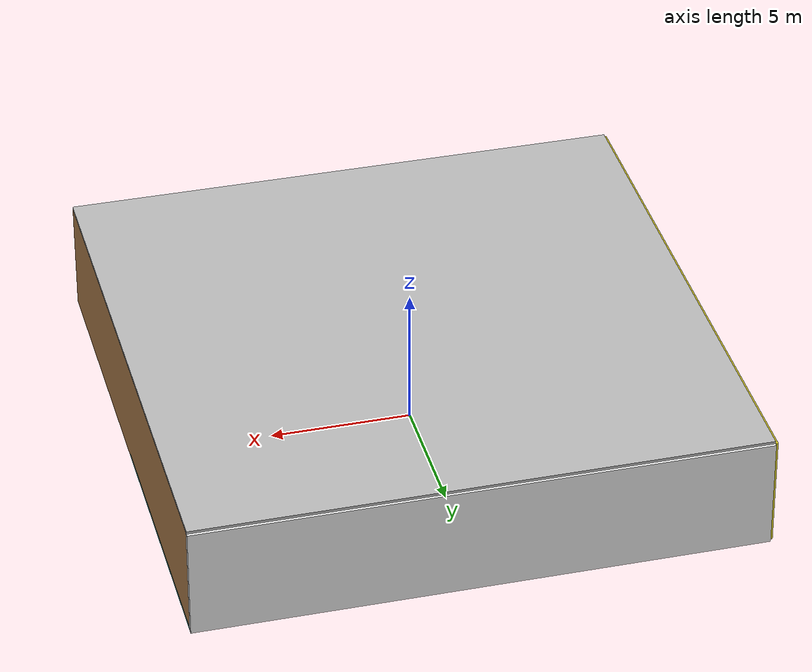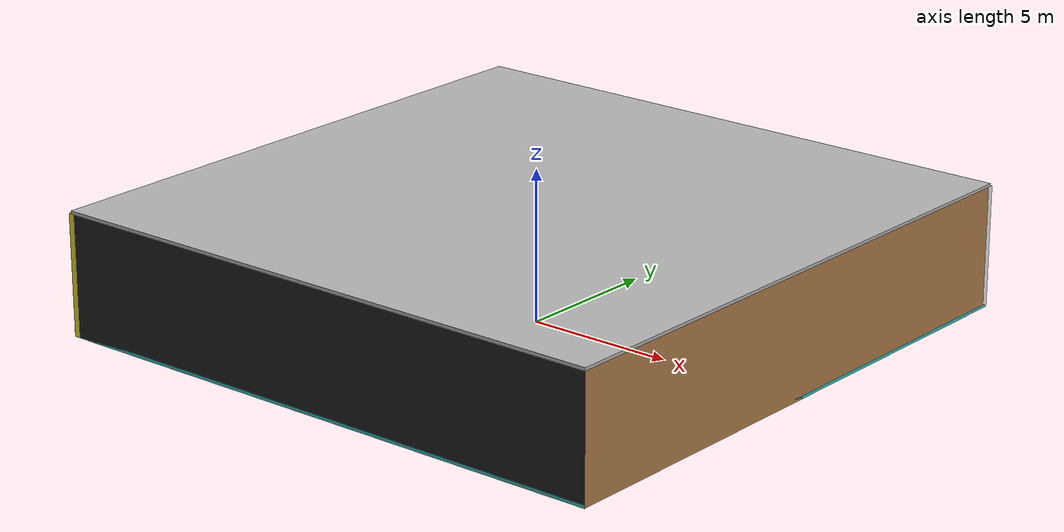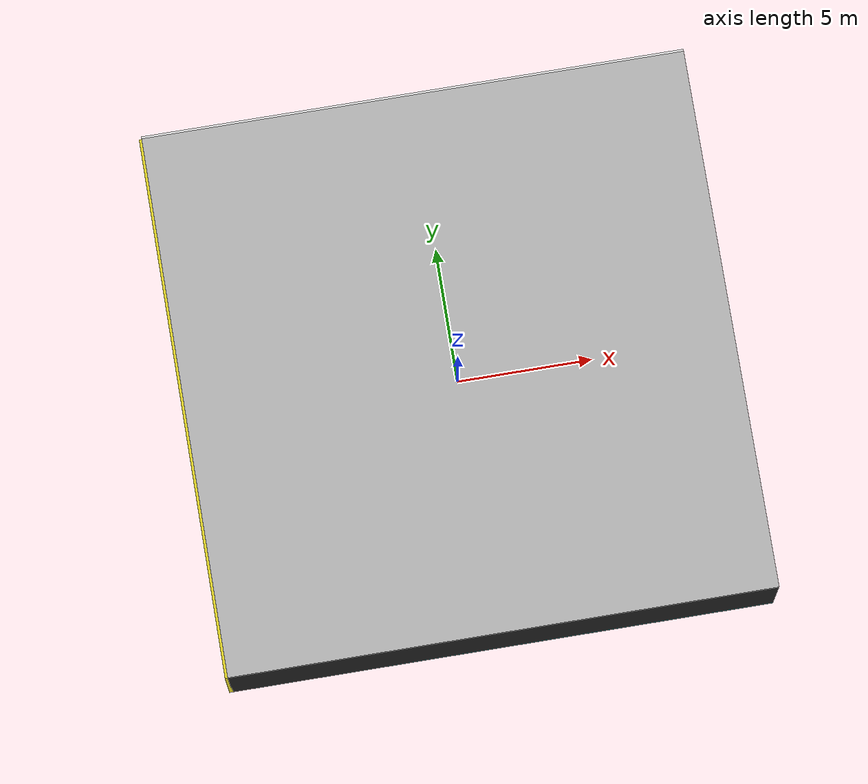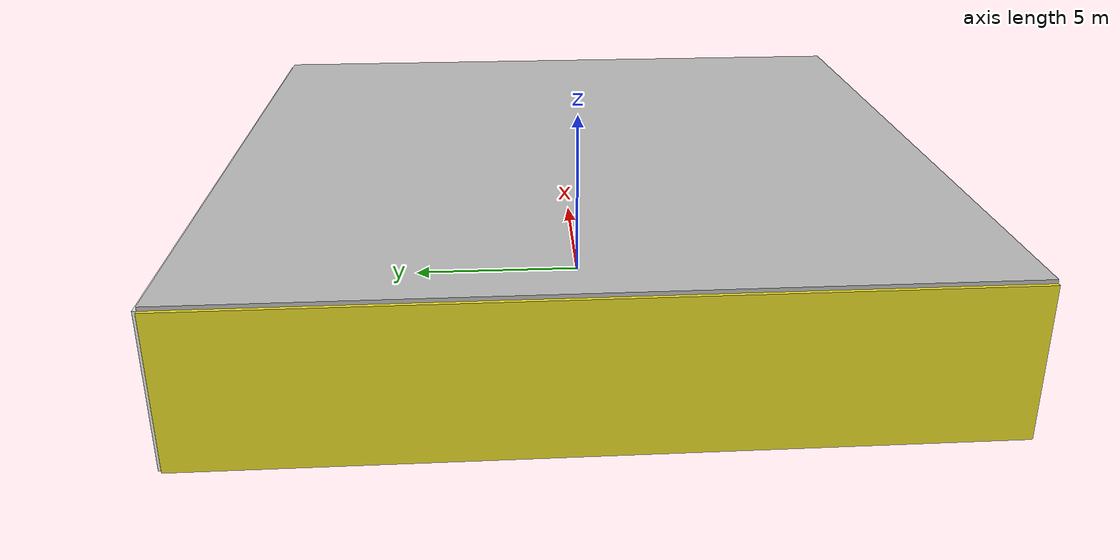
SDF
<sdf version="1.4">
 <world name="default">
  <physics type="ode">
   <max_step_size>0.001</max_step_size>
   <real_time_factor>1</real_time_factor>
   <real_time_update_rate>1000</real_time_update_rate>
   <gravity>0 0 -9.8</gravity>
  </physics>
  <scene><ambient>0.4 0.4 0.4 1</ambient><background>0.7 0.7 0.7 1</background><shadows>1</shadows></scene>
  <model name="Surrounding">
   <static>1</static>
   <link name="Ceiling">
    <collision name="Ceiling_Collision"><geometry><box><size>20 20 0.1</size></box></geometry></collision>
    <visual name="Ceiling_Visual">
     <geometry><box><size>20 20 0.1</size></box></geometry>
     <material>
      <script><uri>file://media/materials/scripts/gazebo.material</uri><name>Gazebo/PioneerBody</name></script>
     </material>
    </visual>
    <pose>0 0 4.05 0 0 0</pose>
   </link>
   <link name="Wall_South">
    <collision name="Wall_South_Collision">
     <geometry><box><size>20 0 4</size></box></geometry>
     <pose>0 0 2 0 -0 0</pose>
    </collision>
    <visual name="Wall_South_Visual">
     <pose>0 0 2 0 -0 0</pose>
     <geometry><box><size>20 0 4</size></box></geometry>
     <material>
      <script><uri>file://media/materials/scripts/gazebo.material</uri><name>Gazebo/Black</name></script>
     </material>
    </visual>
    <velocity_decay><linear>0</linear><angular>0</angular></velocity_decay>
    <pose>0 -10 0 0 -0 0</pose>
   </link>
   <link name="Wall_East">
    <collision name="Wall_21_Collision">
     <geometry><box><size>20 0 4</size></box></geometry>
     <pose>0 0 2 0 -0 0</pose>
    </collision>
    <visual name="Wall_21_Visual">
     <pose>0 0 2 0 -0 0</pose>
     <geometry><box><size>20 0 4</size></box></geometry>
     <material>
      <script><uri>file://media/materials/scripts/gazebo.material</uri><name>Gazebo/Wood</name></script>
     </material>
    </visual>
    <velocity_decay><linear>0</linear><angular>0</angular></velocity_decay>
    <pose>10 0 0 0 -0 1.5708</pose>
   </link>
   <link name="Wall_North">
    <collision name="Wall_22_Collision">
     <geometry><box><size>20 0.2 4</size></box></geometry>
     <pose>0 0 2 0 -0 0</pose>
    </collision>
    <visual name="Wall_22_Visual">
     <pose>0 0 2 0 -0 0</pose>
     <geometry><box><size>20 0.2 4</size></box></geometry>
     <material>
      <script><uri>file://media/materials/scripts/gazebo.material</uri><name>Gazebo/White</name></script>
     </material>
    </visual>
    <velocity_decay><linear>0</linear><angular>0</angular></velocity_decay>
    <pose>0 10 0 0 -0 0</pose>
   </link>
   <link name="Wall_West">
    <collision name="Wall_23_Collision">
     <geometry><box><size>20 0.2 4</size></box></geometry>
     <pose>0 0 2 0 -0 0</pose>
    </collision>
    <visual name="Wall_23_Visual">
     <pose>0 0 2 0 -0 0</pose>
     <geometry><box><size>20 0.2 4</size></box></geometry>
     <material>
      <script><uri>file://media/materials/scripts/gazebo.material</uri><name>Gazebo/YellowGlow</name></script>
     </material>
    </visual>
    <velocity_decay><linear>0</linear><angular>0</angular></velocity_decay>
    <pose>-10 0 0 0 0 -1.5708</pose>
   </link>
   <link name="Ground_link">
    <collision name="collision">
     <pose>0 0 .05 0 -0 0</pose>
     <geometry><box><size>20 20 0.1</size></box></geometry>
    </collision>
    <visual name="visual">
     <pose>0 0 .05 0 -0 0</pose>
     <geometry><box><size>20 20 0.1</size></box></geometry>
     <material>
      <script><uri>file://media/materials/scripts/gazebo.material</uri><name>Gazebo/TurquoiseGlow</name></script>
     </material>
    </visual>
   </link>
   <static>1</static>
  </model>
  <spherical_coordinates>
   <surface_model>EARTH_WGS84</surface_model>
   <latitude_deg>0</latitude_deg>
   <longitude_deg>0</longitude_deg>
   <elevation>0</elevation>
   <heading_deg>0</heading_deg>
  </spherical_coordinates>
  <light name="lightball_0" type="diffuse">
   <diffuse>0.8 0.8 0.8 1</diffuse>
   <specular>0.2 0.2 0.2 1</specular>
   <attenuation>
    <range>100</range>
    <constant>0.7</constant>
    <linear>0.01</linear>
    <quadratic>0.001</quadratic>
   </attenuation>
   <direction>-0.5 0.1 -0.9</direction>
   <pose>3.39066844114 -4.52697490676 0.645649970531 0 0 0</pose>
  </light>
  <light name="lightball_1" type="diffuse">
   <diffuse>0.8 0.8 0.8 1</diffuse>
   <specular>0.2 0.2 0.2 1</specular>
   <attenuation>
    <range>100</range>
    <constant>0.7</constant>
    <linear>0.01</linear>
    <quadratic>0.001</quadratic>
   </attenuation>
   <direction>-0.5 0.1 -0.9</direction>
   <pose>-7.65112517961 -9.1887545314 3.23788213962 0 0 0</pose>
  </light>
  <light name="lightball_2" type="diffuse">
   <diffuse>0.8 0.8 0.8 1</diffuse>
   <specular>0.2 0.2 0.2 1</specular>
   <attenuation>
    <range>100</range>
    <constant>0.7</constant>
    <linear>0.01</linear>
    <quadratic>0.001</quadratic>
   </attenuation>
   <direction>-0.5 0.1 -0.9</direction>
   <pose>9.41040817586 -7.40716559446 0.639061018777 0 0 0</pose>
  </light>
  <light name="lightball_3" type="diffuse">
   <diffuse>0.8 0.8 0.8 1</diffuse>
   <specular>0.2 0.2 0.2 1</specular>
   <attenuation>
    <range>100</range>
    <constant>0.7</constant>
    <linear>0.01</linear>
    <quadratic>0.001</quadratic>
   </attenuation>
   <direction>-0.5 0.1 -0.9</direction>
   <pose>9.6741115382 4.62705125113 3.89042989143 0 0 0</pose>
  </light>
  <light name="lightball_4" type="diffuse">
   <diffuse>0.8 0.8 0.8 1</diffuse>
   <specular>0.2 0.2 0.2 1</specular>
   <attenuation>
    <range>100</range>
    <constant>0.7</constant>
    <linear>0.01</linear>
    <quadratic>0.001</quadratic>
   </attenuation>
   <direction>-0.5 0.1 -0.9</direction>
   <pose>-7.3363529922 1.48332264158 1.41403059371 0 0 0</pose>
  </light>
  <light name="lightball_5" type="diffuse">
   <diffuse>0.8 0.8 0.8 1</diffuse>
   <specular>0.2 0.2 0.2 1</specular>
   <attenuation>
    <range>100</range>
    <constant>0.7</constant>
    <linear>0.01</linear>
    <quadratic>0.001</quadratic>
   </attenuation>
   <direction>-0.5 0.1 -0.9</direction>
   <pose>6.95357437182 -4.7621466617 1.99170856539 0 0 0</pose>
  </light>
  <light name="lightball_6" type="diffuse">
   <diffuse>0.8 0.8 0.8 1</diffuse>
   <specular>0.2 0.2 0.2 1</specular>
   <attenuation>
    <range>100</range>
    <constant>0.7</constant>
    <linear>0.01</linear>
    <quadratic>0.001</quadratic>
   </attenuation>
   <direction>-0.5 0.1 -0.9</direction>
   <pose>-4.62941809674 -0.604975625523 1.4342134231 0 0 0</pose>
  </light>
  <light name="lightball_7" type="diffuse">
   <diffuse>0.8 0.8 0.8 1</diffuse>
   <specular>0.2 0.2 0.2 1</specular>
   <attenuation>
    <range>100</range>
    <constant>0.7</constant>
    <linear>0.01</linear>
    <quadratic>0.001</quadratic>
   </attenuation>
   <direction>-0.5 0.1 -0.9</direction>
   <pose>-1.50641208759 5.33335459292 2.65959208113 0 0 0</pose>
  </light>
  <light name="lightball_8" type="diffuse">
   <diffuse>0.8 0.8 0.8 1</diffuse>
   <specular>0.2 0.2 0.2 1</specular>
   <attenuation>
    <range>100</range>
    <constant>0.7</constant>
    <linear>0.01</linear>
    <quadratic>0.001</quadratic>
   </attenuation>
   <direction>-0.5 0.1 -0.9</direction>
   <pose>-1.83756662507 8.94183305663 0.823944965792 0 0 0</pose>
  </light>
  <light name="lightball_9" type="diffuse">
   <diffuse>0.8 0.8 0.8 1</diffuse>
   <specular>0.2 0.2 0.2 1</specular>
   <attenuation>
    <range>100</range>
    <constant>0.7</constant>
    <linear>0.01</linear>
    <quadratic>0.001</quadratic>
   </attenuation>
   <direction>-0.5 0.1 -0.9</direction>
   <pose>8.2266670217 8.59921086246 3.31784087489 0 0 0</pose>
  </light>
  <light name="lightball_10" type="diffuse">
   <diffuse>0.8 0.8 0.8 1</diffuse>
   <specular>0.2 0.2 0.2 1</specular>
   <attenuation>
    <range>100</range>
    <constant>0.7</constant>
    <linear>0.01</linear>
    <quadratic>0.001</quadratic>
   </attenuation>
   <direction>-0.5 0.1 -0.9</direction>
   <pose>-4.23236407747 -2.72471154191 0.930665758979 0 0 0</pose>
  </light>
  <light name="lightball_11" type="diffuse">
   <diffuse>0.8 0.8 0.8 1</diffuse>
   <specular>0.2 0.2 0.2 1</specular>
   <attenuation>
    <range>100</range>
    <constant>0.7</constant>
    <linear>0.01</linear>
    <quadratic>0.001</quadratic>
   </attenuation>
   <direction>-0.5 0.1 -0.9</direction>
   <pose>-6.67937242256 -2.9979134875 2.31247445039 0 0 0</pose>
  </light>
  <light name="lightball_12" type="diffuse">
   <diffuse>0.8 0.8 0.8 1</diffuse>
   <specular>0.2 0.2 0.2 1</specular>
   <attenuation>
    <range>100</range>
    <constant>0.7</constant>
    <linear>0.01</linear>
    <quadratic>0.001</quadratic>
   </attenuation>
   <direction>-0.5 0.1 -0.9</direction>
   <pose>1.68113262569 0.594454626253 2.32507370298 0 0 0</pose>
  </light>
  <light name="lightball_13" type="diffuse">
   <diffuse>0.8 0.8 0.8 1</diffuse>
   <specular>0.2 0.2 0.2 1</specular>
   <attenuation>
    <range>100</range>
    <constant>0.7</constant>
    <linear>0.01</linear>
    <quadratic>0.001</quadratic>
   </attenuation>
   <direction>-0.5 0.1 -0.9</direction>
   <pose>-1.53393840431 5.11163200773 2.56084804742 0 0 0</pose>
  </light>
  <include><uri>model://cabinet</uri><pose>-4.22291456281 -1.76296281866 0 0 0 1.29849491746</pose></include>
  <include>
   <uri>model://construction_cone</uri>
   <pose>-4.06299058255 5.10829360493 0 0 0 2.70882954537</pose>
  </include>
  <include><uri>model://cabinet</uri><pose>-2.66296803189 6.90490687696 0 0 0 2.31461582035</pose></include>
  <include>
   <uri>model://construction_cone</uri>
   <pose>1.69738968574 -7.07980953191 0 0 0 1.20442069213</pose>
  </include>
  <include>
   <uri>model://robocup_3Dsim_goal</uri>
   <pose>0.955766996012 6.44304388649 0 0 0 2.01663447067</pose>
  </include>
  <include>
   <uri>model://robocup_3Dsim_goal</uri>
   <pose>7.34960727759 8.60672449533 0 0 0 1.19402218437</pose>
  </include>
 </world>
</sdf>

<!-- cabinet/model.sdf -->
<sdf version="1.5">
  <model name="cabinet">
    <static>true</static>
    <link name="cabinet_bottom_plate">
      <inertial>
        <pose>0 0 -1 0 0 0</pose>
        <inertia>
          <ixx>2.050000</ixx>
          <ixy>0</ixy>
          <ixz>0</ixz>
          <iyy>2.050000</iyy>
          <iyz>0</iyz>
          <izz>2.050000</izz>
        </inertia>
        <mass>25.000000</mass>
      </inertial>
      <collision name="cabinet_bottom_plate_geom">
        <pose>0 0 0.010000 0 0 0</pose>
        <geometry>
          <box>
            <size>0.450000 0.450000 0.020000</size>
          </box>
        </geometry>
      </collision>
      <visual name="cabinet_bottom_plate_geom_visual">
        <pose>0 0 0.010000 0 0 0</pose>
        <geometry>
          <box>
            <size>0.450000 0.450000 0.020000</size>
          </box>
        </geometry>
        <material>
          <script>
            <uri>model://media/materials/scripts/gazebo.material</uri>
            <name>Gazebo/Wood</name>
          </script>
        </material>
      </visual>
      <collision name="cabinet_bottom_plate_geom_cabinet_back_plate">
        <pose>0.235000 0 0.510000 0 0 0</pose>
        <geometry>
          <box>
            <size>0.020000 0.450000 1.020000</size>
          </box>
        </geometry>
      </collision>
      <visual name="cabinet_bottom_plate_geom_cabinet_back_plate_visual">
        <pose>0.235000 0 0.510000 0 0 0</pose>
        <geometry>
          <box>
            <size>0.020000 0.450000 1.020000</size>
          </box>
        </geometry>
        <material>
          <script>
            <uri>model://media/materials/scripts/gazebo.material</uri>
            <name>Gazebo/Wood</name>
          </script>
        </material>
      </visual>
      <collision name="cabinet_bottom_plate_geom_cabinet_left_plate">
        <pose>0 0.235000 0.510000 0 0 0</pose>
        <geometry>
          <box>
            <size>0.450000 0.020000 1.020000</size>
          </box>
        </geometry>
      </collision>
      <visual name="cabinet_bottom_plate_geom_cabinet_left_plate_visual">
        <pose>0 0.235000 0.510000 0 0 0</pose>
        <geometry>
          <box>
            <size>0.450000 0.020000 1.020000</size>
          </box>
        </geometry>
        <material>
          <script>
            <uri>model://media/materials/scripts/gazebo.material</uri>
            <name>Gazebo/Wood</name>
          </script>
        </material>
      </visual>
      <collision name="cabinet_bottom_plate_geom_cabinet_middle_plate">
        <pose>0 0 0.510000 0 0 0</pose>
        <geometry>
          <box>
            <size>0.450000 0.450000 0.020000</size>
          </box>
        </geometry>
      </collision>
      <visual name="cabinet_bottom_plate_geom_cabinet_middle_plate_visual">
        <pose>0 0 0.510000 0 0 0</pose>
        <geometry>
          <box>
            <size>0.450000 0.450000 0.020000</size>
          </box>
        </geometry>
        <material>
          <script>
            <uri>model://media/materials/scripts/gazebo.material</uri>
            <name>Gazebo/Wood</name>
          </script>
        </material>
      </visual>
      <collision name="cabinet_bottom_plate_geom_cabinet_right_plate">
        <pose>0 -0.235000 0.510000 0 0 0</pose>
        <geometry>
          <box>
            <size>0.450000 0.020000 1.020000</size>
          </box>
        </geometry>
      </collision>
      <visual name="cabinet_bottom_plate_geom_cabinet_right_plate_visual">
        <pose>0 -0.235000 0.510000 0 0 0</pose>
        <geometry>
          <box>
            <size>0.450000 0.020000 1.020000</size>
          </box>
        </geometry>
        <material>
          <script>
            <uri>model://media/materials/scripts/gazebo.material</uri>
            <name>Gazebo/Wood</name>
          </script>
        </material>
      </visual>
      <collision name="cabinet_bottom_plate_geom_cabinet_top_plate">
        <pose>0 0 1.010000 0 0 0</pose>
        <geometry>
          <box>
            <size>0.450000 0.450000 0.020000</size>
          </box>
        </geometry>
      </collision>
      <visual name="cabinet_bottom_plate_geom_cabinet_top_plate_visual">
        <pose>0 0 1.010000 0 0 0</pose>
        <geometry>
          <box>
            <size>0.450000 0.450000 0.020000</size>
          </box>
        </geometry>
        <material>
          <script>
            <uri>model://media/materials/scripts/gazebo.material</uri>
            <name>Gazebo/Wood</name>
          </script>
        </material>
      </visual>
    </link>
  </model>
</sdf>

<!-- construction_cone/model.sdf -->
<sdf version="1.5">
  <model name="Construction Cone">
    <link name="link">
      <collision name="collision">
        <geometry>
          <mesh>
            <scale>10 10 10</scale>
            <uri>file://isr-testbed/construction_cone/meshes/construction_cone.dae</uri>
          </mesh>
        </geometry>
      </collision>
      <visual name="visual">
        <geometry>
          <mesh>
            <scale>10 10 10</scale>
            <uri>file://isr-testbed/construction_cone/meshes/construction_cone.dae</uri>
          </mesh>
        </geometry>
      </visual>
    </link>
  </model>
</sdf>

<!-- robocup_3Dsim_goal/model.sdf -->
<sdf version="1.5">
  <model name="robocup_3d_goal">
    <static>true</static>
    <link name="left_post">
      <pose>0 1.05 0.45 0 0 0</pose>
      <collision name="collision">
        <geometry>
          <cylinder>
            <radius>0.05</radius>
            <length>0.9</length>
          </cylinder>
        </geometry>
      </collision>
      <visual name="visual">
        <geometry>
          <cylinder>
            <radius>0.05</radius>
            <length>0.9</length>
          </cylinder>
        </geometry>
        <material>
          <script>
            <uri>file://media/materials/scripts/gazebo.material</uri>
            <name>Gazebo/ZincYellow</name>
          </script>
        </material>
      </visual>
    </link>
    <link name="left_support_horiz_lower">
      <pose>0.30 1.05 0.01 0 0 0</pose>
      <collision name="collision">
        <geometry>
          <box>
            <size>0.50 0.02 0.02</size>
          </box>
        </geometry>
      </collision>
      <visual name="visual">
        <geometry>
          <box>
            <size>0.50 0.02 0.02</size>
          </box>
        </geometry>
        <material>
          <script>
            <uri>file://media/materials/scripts/gazebo.material</uri>
            <name>Gazebo/White</name>
          </script>
        </material>
      </visual>
    </link>
    <link name="left_support_horiz_upper">
      <pose>0.30 1.05 0.79 0 0 0</pose>
      <collision name="collision">
        <geometry>
          <box>
            <size>0.50 0.02 0.02</size>
          </box>
        </geometry>
      </collision>
      <visual name="visual">
        <geometry>
          <box>
            <size>0.50 0.02 0.02</size>
          </box>
        </geometry>
        <material>
          <script>
            <uri>file://media/materials/scripts/gazebo.material</uri>
            <name>Gazebo/White</name>
          </script>
        </material>
      </visual>
    </link>
    <link name="left_support_vertical">
      <pose>0.56 1.05 0.4 0 1.5708 0</pose>
      <collision name="collision">
        <geometry>
          <box>
            <size>0.80 0.02 0.02</size>
          </box>
        </geometry>
      </collision>
      <visual name="visual">
        <geometry>
          <box>
            <size>0.80 0.02 0.02</size>
          </box>
        </geometry>
        <material>
          <script>
            <uri>file://media/materials/scripts/gazebo.material</uri>
            <name>Gazebo/White</name>
          </script>
        </material>
      </visual>
    </link>
    <link name="right_support_horiz_lower">
      <pose>0.30 -1.05 0.01 0 0 0</pose>
      <collision name="collision">
        <geometry>
          <box>
            <size>0.50 0.02 0.02</size>
          </box>
        </geometry>
      </collision>
      <visual name="visual">
        <geometry>
          <box>
            <size>0.50 0.02 0.02</size>
          </box>
        </geometry>
        <material>
          <script>
            <uri>file://media/materials/scripts/gazebo.material</uri>
            <name>Gazebo/White</name>
          </script>
        </material>
      </visual>
    </link>
    <link name="right_support_horiz_upper">
      <pose>0.30 -1.05 0.79 0 0 0</pose>
      <collision name="collision">
        <geometry>
          <box>
            <size>0.50 0.02 0.02</size>
          </box>
        </geometry>
      </collision>
      <visual name="visual">
        <geometry>
          <box>
            <size>0.50 0.02 0.02</size>
          </box>
        </geometry>
        <material>
          <script>
            <uri>file://media/materials/scripts/gazebo.material</uri>
            <name>Gazebo/White</name>
          </script>
        </material>
      </visual>
    </link>
    <link name="right_support_vertical">
      <pose>0.56 -1.05 0.4 0 1.5708 0</pose>
      <collision name="collision">
        <geometry>
          <box>
            <size>0.80 0.02 0.02</size>
          </box>
        </geometry>
      </collision>
      <visual name="visual">
        <geometry>
          <box>
            <size>0.80 0.02 0.02</size>
          </box>
        </geometry>
        <material>
          <script>
            <uri>file://media/materials/scripts/gazebo.material</uri>
            <name>Gazebo/White</name>
          </script>
        </material>
      </visual>
    </link>
    <link name="center_support_horiz_lower">
      <pose>0.56 0 0.01 0 1.5708 0</pose>
      <collision name="collision">
        <geometry>
          <box>
            <size>0.02 2.08 0.02</size>
          </box>
        </geometry>
      </collision>
      <visual name="visual">
        <geometry>
          <box>
            <size>0.02 2.08 0.02</size>
          </box>
        </geometry>
        <material>
          <script>
            <uri>file://media/materials/scripts/gazebo.material</uri>
            <name>Gazebo/White</name>
          </script>
        </material>
      </visual>
    </link>
    <link name="center_support_horiz_upper">
      <pose>0.56 0 0.79 0 1.5708 0</pose>
      <collision name="collision">
        <geometry>
          <box>
            <size>0.02 2.08 0.02</size>
          </box>
        </geometry>
      </collision>
      <visual name="visual">
        <geometry>
          <box>
            <size>0.02 2.08 0.02</size>
          </box>
        </geometry>
        <material>
          <script>
            <uri>file://media/materials/scripts/gazebo.material</uri>
            <name>Gazebo/White</name>
          </script>
        </material>
      </visual>
    </link>
    <link name="right_post">
      <pose>0 -1.05 0.45 0 0 0</pose>
      <collision name="collision">
        <geometry>
          <cylinder>
            <radius>0.05</radius>
            <length>0.9</length>
          </cylinder>
        </geometry>
      </collision>
      <visual name="visual">
        <geometry>
          <cylinder>
            <radius>0.05</radius>
            <length>0.9</length>
          </cylinder>
        </geometry>
        <material>
          <script>
            <uri>file://media/materials/scripts/gazebo.material</uri>
            <name>Gazebo/ZincYellow</name>
          </script>
        </material>
      </visual>
    </link>
    <link name="crossbar">
      <pose>0 0 0.85 1.57 1.57 0</pose>
      <collision name="collision">
        <geometry>
          <cylinder>
            <radius>0.05</radius>
            <length>2.0</length>
          </cylinder>
        </geometry>
      </collision>
      <visual name="visual">
        <geometry>
          <cylinder>
            <radius>0.05</radius>
            <length>2.0</length>
          </cylinder>
        </geometry>
        <material>
          <script>
            <uri>file://media/materials/scripts/gazebo.material</uri>
            <name>Gazebo/ZincYellow</name>
          </script>
        </material>
      </visual>
    </link>
    <link name="center_net">
      <pose>0.56 0 0.40 0 0 0</pose>
      <collision name="collision">
        <geometry>
          <box>
            <size>0.01 2.1 0.80</size>
          </box>
        </geometry>
      </collision>
      <visual name="visual">
        <geometry>
          <box>
            <size>0.01 2.1 0.80</size>
          </box>
        </geometry>
        <material>
          <script>
            <uri>model://../model_source/models/robocup09_spl_field/materials/scripts/</uri>
            <uri>model://../model_source/models/robocup09_spl_field/materials/textures/</uri>
            <name>RoboCup/Net</name>
          </script>
        </material>
      </visual>
    </link>
    <link name="left_net">
      <pose>0.30 1.05 0.40 0 0 0</pose>
      <collision name="collision">
        <geometry>
          <box>
            <size>0.50 0.01 0.76</size>
          </box>
        </geometry>
      </collision>
      <visual name="visual">
        <geometry>
          <box>
            <size>0.50 0.01 0.76</size>
          </box>
        </geometry>
        <material>
          <script>
            <uri>model://../model_source/models/robocup09_spl_field/materials/scripts/</uri>
            <uri>model://../model_source/models/robocup09_spl_field/materials/textures/</uri>
            <name>RoboCup/Net</name>
          </script>
        </material>
      </visual>
    </link>
    <link name="right_net">
      <pose>0.30 -1.05 0.40 0 0 0</pose>
      <collision name="collision">
        <geometry>
          <box>
            <size>0.50 0.01 0.76</size>
          </box>
        </geometry>
      </collision>
      <visual name="visual">
        <geometry>
          <box>
            <size>0.50 0.01 0.76</size>
          </box>
        </geometry>
        <material>
          <script>
            <uri>model://../model_source/models/robocup09_spl_field/materials/scripts/</uri>
            <uri>model://../model_source/models/robocup09_spl_field/materials/textures/</uri>
            <name>RoboCup/Net</name>
          </script>
        </material>
      </visual>
    </link>
  </model>
</sdf>
